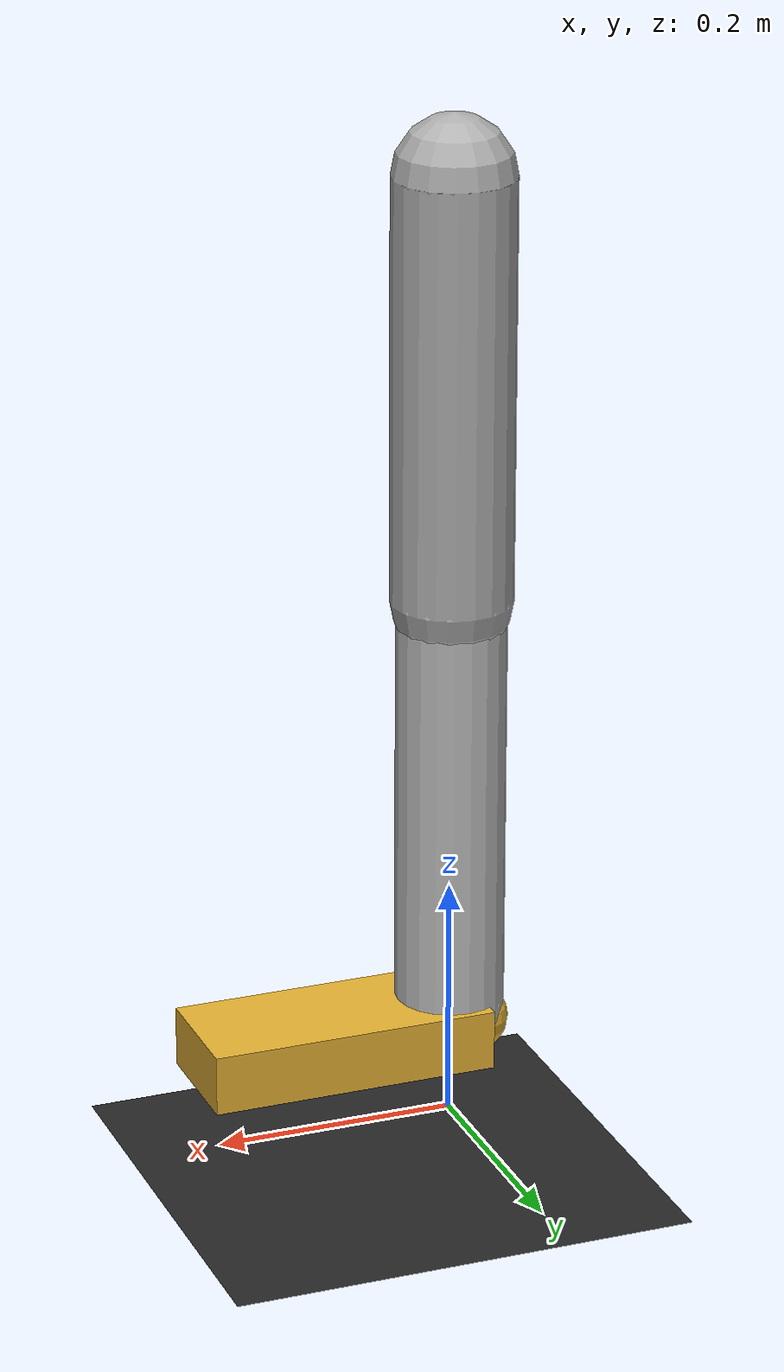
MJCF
<mujoco model="leg2dof">
  <compiler angle="radian" coordinate="local" inertiafromgeom="true"/>
  <option timestep="0.002" gravity="0 0 -9.81" integrator="RK4"/>
  <size njmax="2000" nconmax="500"/>
  <default>
    <joint damping="0.4" armature="0.02" limited="true"/>
    <geom friction="1.0 0.02 0.001" density="800" rgba="0.8 0.8 0.8 1"/>
    <motor ctrllimited="true" ctrlrange="-150 150"/>
  </default>

  <worldbody>
    <!-- Ground -->
    <geom name="ground" type="plane" size="5 5 0.1" rgba="0.15 0.15 0.15 1"/>

    <!-- A simple planar leg: hip (fixed) -> thigh -> knee -> shank -> ankle -> foot -->
    <body name="hip" pos="0 0 0.8">
      <!-- Hip anchor is fixed in space (no hip joint); you can add hip later if you want. -->
      <geom name="hip_vis" type="sphere" size="0.03" rgba="0.2 0.6 0.9 1" contype="0" conaffinity="0"/>

      <body name="thigh" pos="0 0 0">
        <!-- Thigh visual/collision -->
        <geom name="thigh_geom" type="capsule" fromto="0 0 0  0 0 -0.35" size="0.05" rgba="0.7 0.7 0.7 1"/>

        <body name="shank" pos="0 0 -0.35">
          <!-- Knee hinge: rotate about Y (sagittal plane flex/extend) -->
          <joint name="knee" type="hinge" axis="0 1 0" range="-1.7 0.2"/>

          <geom name="shank_geom" type="capsule" fromto="0 0 0  0 0 -0.35" size="0.045" rgba="0.75 0.75 0.75 1"/>

          <body name="foot" pos="0 0 -0.35">
            <!-- Ankle hinge: rotate about Y -->
            <joint name="ankle" type="hinge" axis="0 1 0" range="-0.9 0.9"/>

            <!-- Foot (a small box) -->
            <geom name="foot_geom" type="box" size="0.12 0.05 0.025" pos="0.10 0 -0.02" rgba="0.9 0.7 0.2 1"/>
            <!-- Heel contact bump -->
            <geom name="heel_geom" type="sphere" size="0.03" pos="-0.02 0 -0.02" rgba="0.9 0.7 0.2 1"/>

            <!-- Useful site for logging -->
            <site name="foot_site" pos="0.10 0 -0.02" size="0.01" rgba="1 0 0 1"/>
          </body>
        </body>
      </body>
    </body>
  </worldbody>

  <actuator>
    <!-- Torque motors -->
    <motor name="knee_motor" joint="knee"/>
    <motor name="ankle_motor" joint="ankle"/>
  </actuator>

  <keyframe>
    <!-- Start with slightly flexed knee so it settles nicely -->
    <key name="home" qpos="0.0 -0.35"/>
  </keyframe>
</mujoco>
